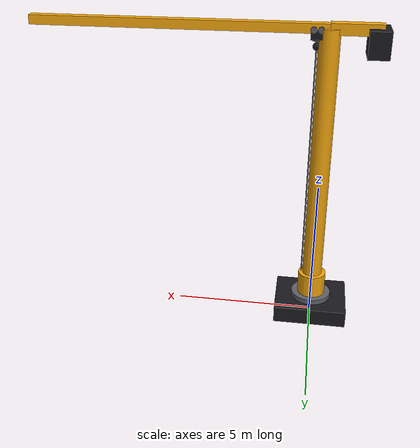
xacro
<?xml version="1.0"?>

<robot
  xmlns:xacro="http://www.ros.org/wiki/xacro"
  name="crane">

  <xacro:arg name="prefix" default="crane_"/>
  <xacro:property name="prefix" value="$(arg prefix)"/>
  <xacro:arg name="boom_length" default="10.0"/>
  <xacro:property name="boom_length" value="$(arg boom_length)"/>
  <xacro:property name="boom_scale" value="${boom_length / 6.0}"/>

  <!-- ==================== Materials ==================== -->

  <material name="crane_yellow">
    <color rgba="0.95 0.65 0.05 1.0"/>
  </material>

  <material name="crane_dark">
    <color rgba="0.10 0.10 0.12 1.0"/>
  </material>

  <material name="crane_gray">
    <color rgba="0.38 0.39 0.42 1.0"/>
  </material>

  <!-- ==================== Base ==================== -->

  <link name="${prefix}base_link">

    <visual>
      <origin xyz="0 0 0.30" rpy="0 0 0"/>
      <geometry>
        <box size="2.60 2.20 0.60"/>
      </geometry>
      <material name="crane_dark"/>
    </visual>

    <visual>
      <origin xyz="0 0 0.68" rpy="0 0 0"/>
      <geometry>
        <cylinder radius="0.72" length="0.20"/>
      </geometry>
      <material name="crane_gray"/>
    </visual>

    <collision>
      <origin xyz="0 0 0.30" rpy="0 0 0"/>
      <geometry>
        <box size="2.60 2.20 0.60"/>
      </geometry>
    </collision>

    <inertial>
      <origin xyz="0 0 0.30" rpy="0 0 0"/>
      <mass value="3500.0"/>
      <inertia
        ixx="1600.0"
        ixy="0.0"
        ixz="0.0"
        iyy="2100.0"
        iyz="0.0"
        izz="2800.0"/>
    </inertial>

  </link>

  <!-- ==================== Tower ==================== -->

  <link name="${prefix}tower_link">

    <visual>
      <origin xyz="0 0 5.00" rpy="0 0 0"/>
      <geometry>
        <cylinder radius="0.35" length="10.00"/>
      </geometry>
      <material name="crane_yellow"/>
    </visual>

    <!-- Lower reinforcement -->

    <visual>
      <origin xyz="0 0 0.50" rpy="0 0 0"/>
      <geometry>
        <cylinder radius="0.50" length="1.00"/>
      </geometry>
      <material name="crane_yellow"/>
    </visual>

    <collision>
      <origin xyz="0 0 5.00" rpy="0 0 0"/>
      <geometry>
        <cylinder radius="0.35" length="10.00"/>
      </geometry>
    </collision>

    <inertial>
      <origin xyz="0 0 5.00" rpy="0 0 0"/>
      <mass value="1800.0"/>
      <inertia
        ixx="15000.0"
        ixy="0.0"
        ixz="0.0"
        iyy="15000.0"
        iyz="0.0"
        izz="220.0"/>
    </inertial>

  </link>

  <joint name="${prefix}tower_joint" type="continuous">
    <parent link="${prefix}base_link"/>
    <child link="${prefix}tower_link"/>
    <origin xyz="0 0 0.60" rpy="0 0 0"/>
    <axis xyz="0 0 1"/>
    <limit effort="20000.0" velocity="0.75"/>
    <dynamics damping="2.0" friction="1.0"/>
  </joint>

  <!-- ==================== Boom ==================== -->

  <link name="${prefix}boom_link">

    <!-- Main forward boom -->

    <visual>
      <origin xyz="${boom_length / 2.0} 0 0" rpy="0 0 0"/>
      <geometry>
        <box size="${boom_length} 0.32 0.32"/>
      </geometry>
      <material name="crane_yellow"/>
    </visual>

    <!-- Rear counter-boom -->

    <visual>
      <origin xyz="-0.85 0 0" rpy="0 0 0"/>
      <geometry>
        <box size="1.70 0.38 0.38"/>
      </geometry>
      <material name="crane_yellow"/>
    </visual>

    <!-- Counterweight -->

    <visual>
      <origin xyz="-1.55 0 -0.40" rpy="0 0 0"/>
      <geometry>
        <box size="0.70 1.10 0.90"/>
      </geometry>
      <material name="crane_dark"/>
    </visual>

    <collision>
      <origin xyz="${boom_length / 2.0} 0 0" rpy="0 0 0"/>
      <geometry>
        <box size="${boom_length} 0.32 0.32"/>
      </geometry>
    </collision>

    <inertial>
      <!-- Approximate inertia scaled with span; nominal simulation mass retained. -->
      <origin xyz="${1.80 * boom_scale} 0 -0.05" rpy="0 0 0"/>
      <mass value="1100.0"/>
      <inertia
        ixx="160.0"
        ixy="0.0"
        ixz="0.0"
        iyy="${4300.0 * boom_scale * boom_scale}"
        iyz="0.0"
        izz="${4300.0 * boom_scale * boom_scale}"/>
    </inertial>

  </link>

  <joint name="${prefix}boom_joint" type="fixed">
    <parent link="${prefix}tower_link"/>
    <child link="${prefix}boom_link"/>
    <origin xyz="0 0 10.00" rpy="0 0 0"/>
  </joint>

  <!-- ==================== Trolley ==================== -->

  <link name="${prefix}trolley_link">

    <visual>
      <origin xyz="0 0 0" rpy="0 0 0"/>
      <geometry>
        <box size="0.42 0.52 0.28"/>
      </geometry>
      <material name="crane_dark"/>
    </visual>

    <visual>
      <origin xyz="-0.12 0.22 0.17" rpy="1.5708 0 0"/>
      <geometry>
        <cylinder radius="0.10" length="0.08"/>
      </geometry>
      <material name="crane_gray"/>
    </visual>

    <visual>
      <origin xyz="0.12 0.22 0.17" rpy="1.5708 0 0"/>
      <geometry>
        <cylinder radius="0.10" length="0.08"/>
      </geometry>
      <material name="crane_gray"/>
    </visual>

    <visual>
      <origin xyz="-0.12 -0.22 0.17" rpy="1.5708 0 0"/>
      <geometry>
        <cylinder radius="0.10" length="0.08"/>
      </geometry>
      <material name="crane_gray"/>
    </visual>

    <visual>
      <origin xyz="0.12 -0.22 0.17" rpy="1.5708 0 0"/>
      <geometry>
        <cylinder radius="0.10" length="0.08"/>
      </geometry>
      <material name="crane_gray"/>
    </visual>

    <collision>
      <origin xyz="0 0 0" rpy="0 0 0"/>
      <geometry>
        <box size="0.42 0.52 0.28"/>
      </geometry>
    </collision>

    <inertial>
      <origin xyz="0 0 0" rpy="0 0 0"/>
      <mass value="120.0"/>
      <inertia
        ixx="4.0"
        ixy="0.0"
        ixz="0.0"
        iyy="3.0"
        iyz="0.0"
        izz="5.0"/>
    </inertial>

  </link>

  <joint name="${prefix}trolley_joint" type="prismatic">
    <parent link="${prefix}boom_link"/>
    <child link="${prefix}trolley_link"/>
    <origin xyz="0.40 0 -0.20" rpy="0 0 0"/>
    <axis xyz="1 0 0"/>

    <limit
      lower="0.0"
      upper="${boom_length - 0.80}"
      effort="5000.0"
      velocity="1.20"/>

    <dynamics damping="2.0" friction="0.5"/>
  </joint>

  <!-- ==================== Cable guide ==================== -->

  <!--
    RViz cannot dynamically change the length of a cable cylinder.
    This fixed thin guide represents the complete possible cable path.
    The hook moves vertically along this guide.
  -->

  <link name="${prefix}cable_guide_link">

    <visual>
      <origin xyz="0 0 -4.65" rpy="0 0 0"/>
      <geometry>
        <cylinder radius="0.025" length="9.30"/>
      </geometry>
      <material name="crane_gray"/>
    </visual>

    <!-- Estimated simulation mass; requires calibration for load tests. -->
    <inertial><origin xyz="0 0 0" rpy="0 0 0"/><mass value="5.0"/><inertia ixx="36.038281250000004" ixy="0" ixz="0" iyy="36.038281250000004" iyz="0" izz="0.0015625"/></inertial>
  </link>

  <joint name="${prefix}cable_guide_joint" type="fixed">
    <parent link="${prefix}trolley_link"/>
    <child link="${prefix}cable_guide_link"/>
    <origin xyz="0 0 -0.10" rpy="0 0 0"/>
  </joint>

  <!-- ==================== Hook ==================== -->

  <link name="${prefix}hook_link">
    <!-- Visible rigid sling; native fixed joint carries the payload. -->
    <visual><origin xyz="0 0 -0.55"/><geometry><cylinder radius="0.018" length="0.50"/></geometry><material name="crane_gray"/></visual>

    <visual>
      <origin xyz="0 0 0" rpy="0 0 0"/>
      <geometry>
        <cylinder radius="0.16" length="0.22"/>
      </geometry>
      <material name="crane_dark"/>
    </visual>

    <visual>
      <origin xyz="0 0 -0.18" rpy="0 0 0"/>
      <geometry>
        <box size="0.08 0.08 0.28"/>
      </geometry>
      <material name="crane_dark"/>
    </visual>

    <collision>
      <origin xyz="0 0 0" rpy="0 0 0"/>
      <geometry>
        <cylinder radius="0.16" length="0.22"/>
      </geometry>
    </collision>

    <inertial>
      <origin xyz="0 0 -0.10" rpy="0 0 0"/>
      <mass value="80.0"/>
      <inertia
        ixx="1.2"
        ixy="0.0"
        ixz="0.0"
        iyy="1.2"
        iyz="0.0"
        izz="0.8"/>
    </inertial>

  </link>

  <joint name="${prefix}hook_joint" type="prismatic">
    <parent link="${prefix}trolley_link"/>
    <child link="${prefix}hook_carrier_link"/>
    <origin xyz="0 0 -0.10" rpy="0 0 0"/>
    <axis xyz="0 0 -1"/>

    <limit
      lower="0.0"
      upper="9.40"
      effort="80000.0"
      velocity="1.80"/>

    <dynamics damping="3.0" friction="1.0"/>
  </joint>

  <!-- Swivel keeps the load's world orientation during tower rotation. -->
  <link name="${prefix}hook_carrier_link">
    <inertial><mass value="10"/><inertia ixx="0.05" iyy="0.05" izz="0.05" ixy="0" ixz="0" iyz="0"/></inertial>
  </link>
  <joint name="${prefix}hook_yaw_joint" type="revolute">
    <parent link="${prefix}hook_carrier_link"/><child link="${prefix}hook_link"/>
    <origin xyz="0 0 0"/><axis xyz="0 0 1"/>
    <limit lower="-6.2831853" upper="6.2831853" effort="30000" velocity="0.45"/>
    <dynamics damping="2"/>
  </joint>
  <gazebo><plugin filename="ignition-gazebo-joint-controller-system" name="ignition::gazebo::systems::JointController">
    <joint_name>${prefix}hook_yaw_joint</joint_name>
    <topic>/crane/hook_yaw_velocity_cmd</topic><use_force_commands>false</use_force_commands>
    <initial_velocity>0</initial_velocity>
  </plugin></gazebo>
  <!-- Physical hook point used by TF and postconditions -->

  <link name="${prefix}hook_tip_link">

    <visual>
      <origin xyz="0 0 0" rpy="0 0 0"/>
      <geometry>
        <sphere radius="0.13"/>
      </geometry>
      <material name="crane_dark"/>
    </visual>

    <collision>
      <origin xyz="0 0 0" rpy="0 0 0"/>
      <geometry>
        <sphere radius="0.13"/>
      </geometry>
    </collision>

    <inertial>
      <origin xyz="0 0 0" rpy="0 0 0"/>
      <mass value="40.0"/>
      <inertia
        ixx="0.28"
        ixy="0.0"
        ixz="0.0"
        iyy="0.28"
        iyz="0.0"
        izz="0.28"/>
    </inertial>

  </link>

  <joint name="${prefix}hook_tip_joint" type="fixed">
    <parent link="${prefix}hook_link"/>
    <child link="${prefix}hook_tip_link"/>
    <origin xyz="0 0 -0.30" rpy="0 0 0"/>
  </joint>

  <!-- Gazebo Fortress simulation extensions. -->
<link name="world"/><joint name="${prefix}world_fixed_joint" type="fixed"><parent link="world"/><child link="${prefix}base_link"/><origin xyz="0 0 0" rpy="0 0 0"/></joint><gazebo><plugin filename="ignition-gazebo-joint-controller-system" name="ignition::gazebo::systems::JointController">
    <joint_name>${prefix}tower_joint</joint_name>
    <topic>/crane/tower_velocity_cmd</topic><use_force_commands>false</use_force_commands>
    <initial_velocity>0</initial_velocity>
  </plugin></gazebo><gazebo><!-- Trolley position goals are closed-loop controlled by the skill server.
       One velocity controller only; no simultaneous perfect-position driver. -->
  <plugin filename="ignition-gazebo-joint-controller-system" name="ignition::gazebo::systems::JointController">
    <joint_name>${prefix}trolley_joint</joint_name>
    <topic>/crane/trolley_velocity_cmd</topic>
    <!-- Close velocity feedback with bounded motor force. A zero velocity
         target actively damps trolley/load momentum instead of resetting it. -->
    <use_force_commands>true</use_force_commands><initial_velocity>0</initial_velocity>
    <p_gain>20000</p_gain><i_gain>0</i_gain><d_gain>0</d_gain>
    <i_max>0</i_max><i_min>0</i_min>
    <cmd_max>5000</cmd_max><cmd_min>-5000</cmd_min>
  </plugin></gazebo><gazebo><plugin filename="ignition-gazebo-joint-position-controller-system" name="ignition::gazebo::systems::JointPositionController"><joint_name>${prefix}hook_joint</joint_name><topic>/crane/hook_cmd</topic><use_velocity_commands>true</use_velocity_commands><p_gain>1.5</p_gain><cmd_max>0.495</cmd_max><cmd_min>-0.495</cmd_min><initial_position>0.0</initial_position></plugin></gazebo><gazebo><plugin filename="ignition-gazebo-joint-state-publisher-system" name="ignition::gazebo::systems::JointStatePublisher"><topic>/crane/joint_states</topic></plugin></gazebo>
</robot>
